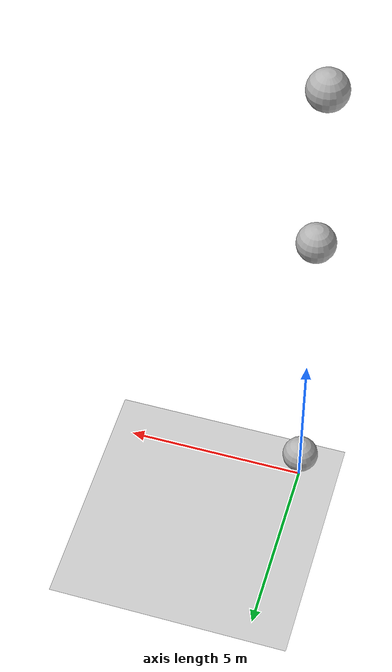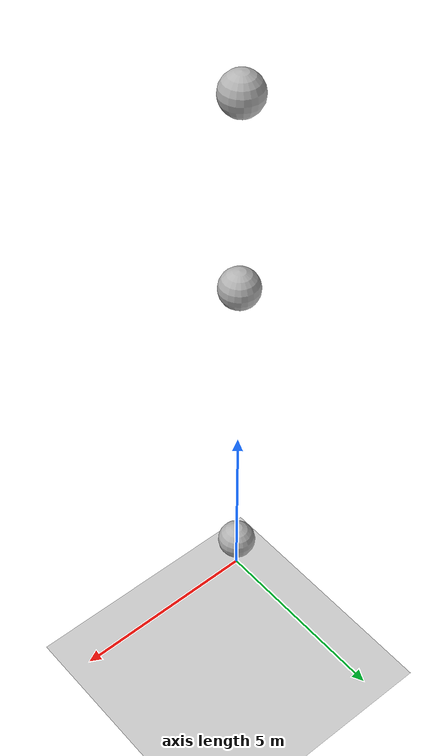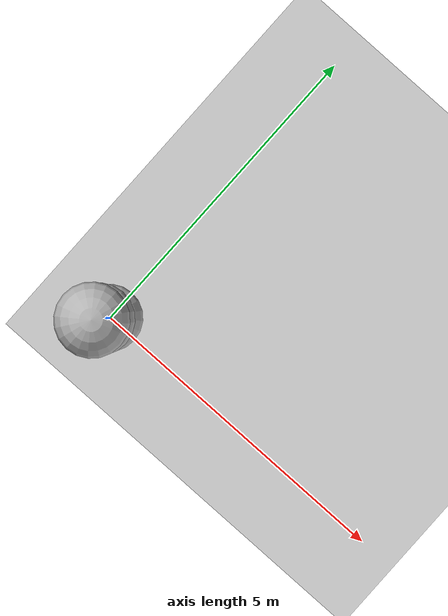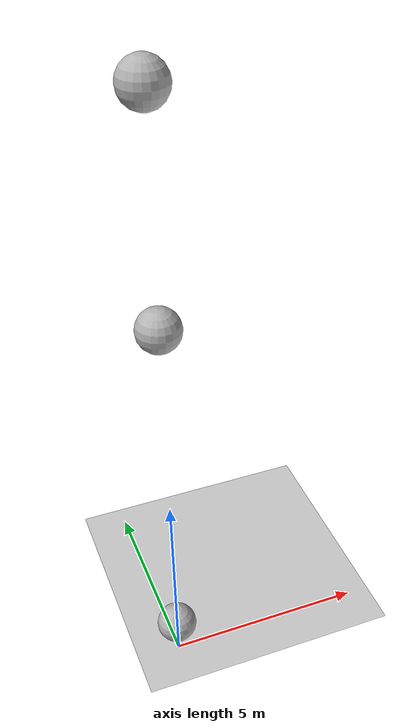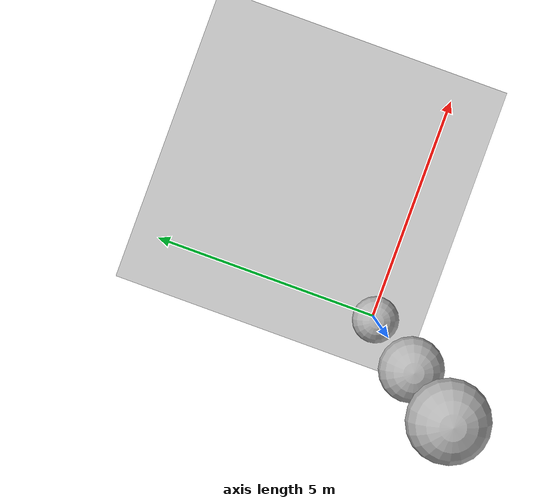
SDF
<sdf version='1.10'>
  <world name='testest'>
    <physics name='1ms' type='ignored'>
      <max_step_size>0.001</max_step_size>
      <real_time_factor>1</real_time_factor>
      <real_time_update_rate>1000</real_time_update_rate>
    </physics>
    <plugin name='gz::sim::systems::Physics' filename='gz-sim-physics-system'/>
    <plugin name='gz::sim::systems::UserCommands' filename='gz-sim-user-commands-system'/>
    <plugin name='gz::sim::systems::SceneBroadcaster' filename='gz-sim-scene-broadcaster-system'/>
    <plugin name='gz::sim::systems::Contact' filename='gz-sim-contact-system'/>
    <gravity>0 0 -9.8000000000000007</gravity>
    <magnetic_field>5.5644999999999998e-06 2.2875799999999999e-05 -4.2388400000000002e-05</magnetic_field>
    <atmosphere type='adiabatic'/>
    <scene>
      <ambient>0.400000006 0.400000006 0.400000006 1</ambient>
      <background>0.699999988 0.699999988 0.699999988 1</background>
      <shadows>true</shadows>
    </scene>
    <model name='ground_plane'>
      <static>true</static>
      <link name='link'>
        <collision name='collision'>
          <geometry>
            <plane>
              <normal>0 0 1</normal>
              <size>100 100</size>
            </plane>
          </geometry>
          <surface>
            <friction>
              <ode/>
            </friction>
            <bounce/>
            <contact/>
          </surface>
        </collision>
        <visual name='visual'>
          <geometry>
            <plane>
              <normal>0 0 1</normal>
              <size>100 100</size>
            </plane>
          </geometry>
          <material>
            <ambient>0.800000012 0.800000012 0.800000012 1</ambient>
            <diffuse>0.800000012 0.800000012 0.800000012 1</diffuse>
            <specular>0.800000012 0.800000012 0.800000012 1</specular>
          </material>
        </visual>
        <pose>0 0 0 0 0 0</pose>
        <inertial>
          <pose>0 0 0 0 0 0</pose>
          <mass>1</mass>
          <inertia>
            <ixx>1</ixx>
            <ixy>0</ixy>
            <ixz>0</ixz>
            <iyy>1</iyy>
            <iyz>0</iyz>
            <izz>1</izz>
          </inertia>
        </inertial>
        <enable_wind>false</enable_wind>
      </link>
      <pose>0 0 0 0 0 0</pose>
      <self_collide>false</self_collide>
    </model>
<model name='sphere'>
      <pose>0 0 1 0 0 0</pose>
      <link name='sphere_link'>
        <inertial>
          <inertia>
            <ixx>0.10000000000000001</ixx>
            <ixy>0</ixy>
            <ixz>0</ixz>
            <iyy>0.10000000000000001</iyy>
            <iyz>0</iyz>
            <izz>0.10000000000000001</izz>
          </inertia>
          <mass>1</mass>
          <pose>0 0 0 0 0 0</pose>
        </inertial>
        <collision name='sphere_collision'>
          <geometry>
            <sphere>
              <radius>0.5</radius>
            </sphere>
          </geometry>
          <surface>
            <friction>
              <ode/>
            </friction>
            <bounce/>
            <contact/>
          </surface>
        </collision>
        <visual name='sphere_visual'>
          <geometry>
            <sphere>
              <radius>0.5</radius>
            </sphere>
          </geometry>
          <material>
            <ambient>0.300000012 0.300000012 0.300000012 1</ambient>
            <diffuse>0.699999988 0.699999988 0.699999988 1</diffuse>
            <specular>1 1 1 1</specular>
          </material>
        </visual>
        <pose>0 0 0 0 0 0</pose>
        <enable_wind>false</enable_wind>
      </link>
      <static>false</static>
      <self_collide>false</self_collide>
    </model>
<model name='sphere2'>
      <pose>0 0 10 0 0 0</pose>
      <link name='sphere_link'>
        <inertial>
          <inertia>
            <ixx>0.10000000000000001</ixx>
            <ixy>0</ixy>
            <ixz>0</ixz>
            <iyy>0.10000000000000001</iyy>
            <iyz>0</iyz>
            <izz>0.10000000000000001</izz>
          </inertia>
          <mass>1</mass>
          <pose>0 0 0 0 0 0</pose>
        </inertial>
        <collision name='sphere_collision'>
          <geometry>
            <sphere>
              <radius>0.5</radius>
            </sphere>
          </geometry>
          <surface>
            <friction>
              <ode/>
            </friction>
            <bounce/>
            <contact/>
          </surface>
        </collision>
        <visual name='sphere_visual'>
          <geometry>
            <sphere>
              <radius>0.5</radius>
            </sphere>
          </geometry>
          <material>
            <ambient>0.300000012 0.300000012 0.300000012 1</ambient>
            <diffuse>0.699999988 0.699999988 0.699999988 1</diffuse>
            <specular>1 1 1 1</specular>
          </material>
        </visual>
        <pose>0 0 0 0 0 0</pose>
        <enable_wind>false</enable_wind>
      </link>
      <static>false</static>
      <self_collide>false</self_collide>
    </model>
<model name='sphere3'>
      <pose>0 0 15 0 0 0</pose>
      <link name='sphere_link'>
        <inertial>
          <inertia>
            <ixx>0.10000000000000001</ixx>
            <ixy>0</ixy>
            <ixz>0</ixz>
            <iyy>0.10000000000000001</iyy>
            <iyz>0</iyz>
            <izz>0.10000000000000001</izz>
          </inertia>
          <mass>1</mass>
          <pose>0 0 0 0 0 0</pose>
        </inertial>
        <collision name='sphere_collision'>
          <geometry>
            <sphere>
              <radius>0.5</radius>
            </sphere>
          </geometry>
          <surface>
            <friction>
              <ode/>
            </friction>
            <bounce/>
            <contact/>
          </surface>
        </collision>
        <visual name='sphere_visual'>
          <geometry>
            <sphere>
              <radius>0.5</radius>
            </sphere>
          </geometry>
          <material>
            <ambient>0.300000012 0.300000012 0.300000012 1</ambient>
            <diffuse>0.699999988 0.699999988 0.699999988 1</diffuse>
            <specular>1 1 1 1</specular>
          </material>
        </visual>
        <pose>0 0 0 0 0 0</pose>
        <enable_wind>false</enable_wind>
      </link>
      <static>false</static>
      <self_collide>false</self_collide>
    </model>
    <light name='sun' type='directional'>
      <pose>0 0 10 0 0 0</pose>
      <cast_shadows>true</cast_shadows>
      <intensity>1</intensity>
      <direction>-0.5 0.10000000000000001 -0.90000000000000002</direction>
      <diffuse>0.800000012 0.800000012 0.800000012 1</diffuse>
      <specular>0.200000003 0.200000003 0.200000003 1</specular>
      <attenuation>
        <range>1000</range>
        <linear>0.0099999997764825821</linear>
        <constant>0.89999997615814209</constant>
        <quadratic>0.0010000000474974513</quadratic>
      </attenuation>
      <spot>
        <inner_angle>0</inner_angle>
        <outer_angle>0</outer_angle>
        <falloff>0</falloff>
      </spot>
    </light>
  </world>
</sdf>
